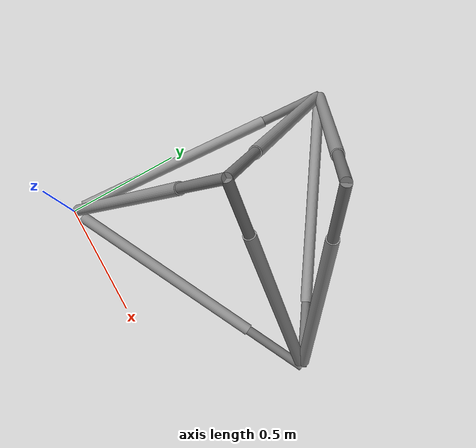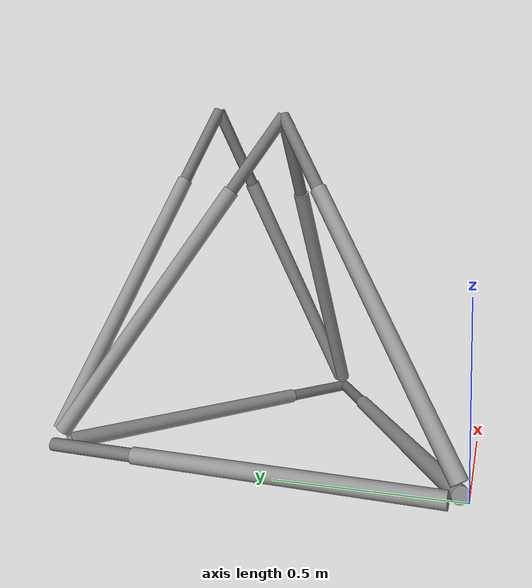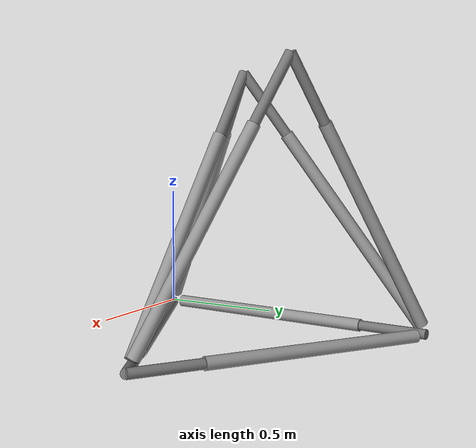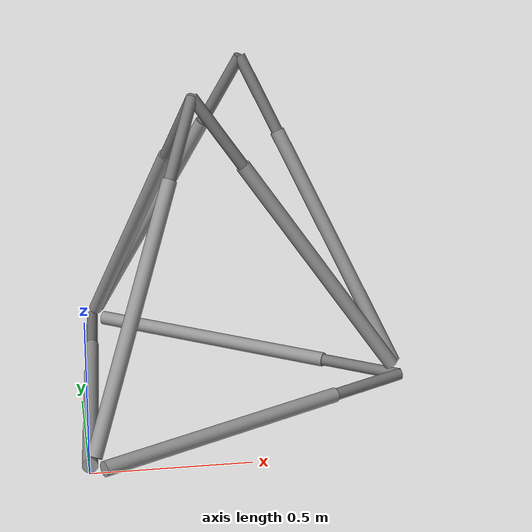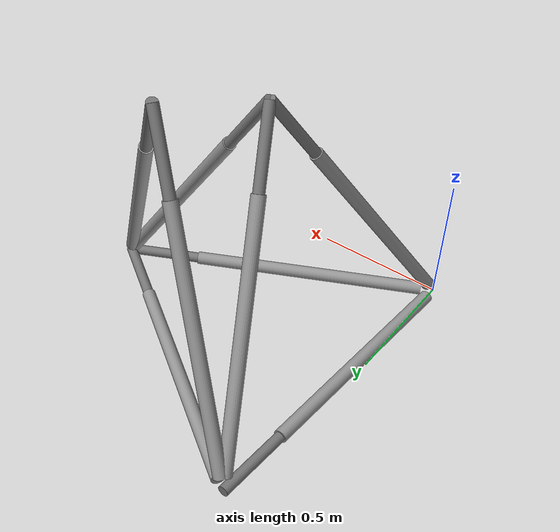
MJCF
<mujoco model="1-tet-1">
  <compiler angle="radian" meshdir="assets" autolimits="true"/>
  <option gravity="0 0 -9.81" timestep="0.002" integrator="implicit"/>

  <option cone="elliptic" impratio="10"/>

  <asset>
    <material name="metal" rgba="0.58 0.58 0.58 1"/>
    <material name="gray" rgba="0.4627 0.4627 0.4627 1"/>
    <material name="red" rgba="0.9 0.1 0.1 1"/>
    <texture name="grid" type="2d" builtin="checker" width="512" height="512" rgb1=".1 .2 .3" rgb2=".2 .3 .4"/>
    <material name="grid" texture="grid" texrepeat="1 1" texuniform="true" reflectance=".2"/>
  </asset>

  <worldbody>
  <body name="ground" pos="0 0 0">
  <freejoint/>

    <body name="[0-1-0]" pos="0.000000 0.000000 0.000000" >

    <geom type="cylinder" pos="0.029142 0.499150 0.000000" axisangle="-0.998300 0.058284 0.000000 1.570796" size="0.025 0.45" material="metal" contype="1"/>
    <body name="[0-1-1]" pos="0.029142 0.499150 0.000000" >
        <geom type="cylinder" pos="0.013724 0.235060 0.000000" axisangle="-0.998300 0.058284 0.000000 1.570796" size="0.02 0.5" material="gray" contype="1"/>
        <joint name="Linear-0-1" type="slide" axis="0.058284 0.998300 0.000000" range="-0.235460 0.714540"/>

    <body name="[1-2-0]" pos="0.042865 0.734210 0.000000" >
    <joint name="Passive1-2" type="ball" pos="0.000000 0.000000 0.000000" axis="0 1 0" damping=".9"/>
    <geom type="cylinder" pos="0.417706 -0.274813 0.000000" axisangle="0.549625 0.835411 -0.000000 1.570796" size="0.025 0.45" material="metal" contype="1"/>
    <body name="[1-2-1]" pos="0.417706 -0.274813 0.000000" >
        <geom type="cylinder" pos="0.196706 -0.129415 0.000000" axisangle="0.549625 0.835411 -0.000000 1.570796" size="0.02 0.5" material="gray" contype="1"/>
        <joint name="Linear-1-2" type="slide" axis="0.835411 -0.549625 0.000000" range="-0.235460 0.714540"/>

    <body name="[2-3-0]" pos="0.614412 -0.404228 0.000000" >
    <joint name="Passive2-3" type="ball" pos="0.000000 0.000000 0.000000" axis="0 1 0" damping=".9"/>
    <geom type="cylinder" pos="-0.288184 0.016825 0.408248" axisangle="-0.033650 -0.576369 0.000000 0.615480" size="0.025 0.45" material="metal" contype="1"/>
    <body name="[2-3-1]" pos="-0.288184 0.016825 0.408248" >
        <geom type="cylinder" pos="-0.135712 0.007923 0.192252" axisangle="-0.033650 -0.576369 0.000000 0.615480" size="0.02 0.5" material="gray" contype="1"/>
        <joint name="Linear-2-3" type="slide" axis="-0.576369 0.033650 0.816497" range="-0.235460 0.714540"/>

    </body>
    </body>

    <body name="[2-4-0]" pos="0.614412 -0.404228 0.000000" >
    <joint name="Passive2-4" type="ball" pos="0.000000 0.000000 0.000000" axis="0 1 0" damping=".9"/>
    <geom type="cylinder" pos="-0.207912 0.138836 0.433009" axisangle="-0.277673 -0.415824 0.000000 0.523612" size="0.025 0.45" material="metal" contype="1"/>
    <body name="[2-4-1]" pos="-0.207912 0.138836 0.433009" >
        <geom type="cylinder" pos="-0.097910 0.065381 0.203913" axisangle="-0.277673 -0.415824 0.000000 0.523612" size="0.02 0.5" material="gray" contype="1"/>
        <joint name="Linear-2-4" type="slide" axis="-0.415824 0.277673 0.866019" range="-0.235460 0.714540"/>

    </body>
    </body>

    </body>
    </body>

    <body name="[1-3-0]" pos="0.042865 0.734210 0.000000" >
    <joint name="Passive1-3" type="ball" pos="0.000000 0.000000 0.000000" axis="0 1 0" damping=".9"/>
    <geom type="cylinder" pos="0.129521 -0.257988 0.408248" axisangle="0.515975 0.259042 -0.000000 0.615480" size="0.025 0.45" material="metal" contype="1"/>
    <body name="[1-3-1]" pos="0.129521 -0.257988 0.408248" >
        <geom type="cylinder" pos="0.060994 -0.121492 0.192252" axisangle="0.515975 0.259042 -0.000000 0.615480" size="0.02 0.5" material="gray" contype="1"/>
        <joint name="Linear-1-3" type="slide" axis="0.259042 -0.515975 0.816497" range="-0.235460 0.714540"/>

    </body>
    </body>

    <body name="[1-4-0]" pos="0.042865 0.734210 0.000000" >
    <joint name="Passive1-4" type="ball" pos="0.000000 0.000000 0.000000" axis="0 1 0" damping=".9"/>
    <geom type="cylinder" pos="0.209794 -0.135976 0.433009" axisangle="0.271953 0.419587 -0.000000 0.523612" size="0.025 0.45" material="metal" contype="1"/>
    <body name="[1-4-1]" pos="0.209794 -0.135976 0.433009" >
        <geom type="cylinder" pos="0.098796 -0.064034 0.203913" axisangle="0.271953 0.419587 -0.000000 0.523612" size="0.02 0.5" material="gray" contype="1"/>
        <joint name="Linear-1-4" type="slide" axis="0.419587 -0.271953 0.866019" range="-0.235460 0.714540"/>

    </body>
    </body>

    </body>
    </body>

    <body name="[0-2-0]" pos="0.000000 0.000000 0.000000" >
    <joint name="Passive0-2" type="ball" pos="0.000000 0.000000 0.000000" axis="0 1 0" damping=".9"/>
    <geom type="cylinder" pos="0.446848 0.224337 0.000000" axisangle="-0.448675 0.893695 0.000000 1.570796" size="0.025 0.45" material="metal" contype="1"/>
    <body name="[0-2-1]" pos="0.446848 0.224337 0.000000" >
        <geom type="cylinder" pos="0.210430 0.105645 0.000000" axisangle="-0.448675 0.893695 0.000000 1.570796" size="0.02 0.5" material="gray" contype="1"/>
        <joint name="Linear-0-2" type="slide" axis="0.893695 0.448675 0.000000" range="-0.235460 0.714540"/>

    </body>
    </body>

    <body name="[0-3-0]" pos="0.000000 0.000000 0.000000" >
    <joint name="Passive0-3" type="ball" pos="0.000000 0.000000 0.000000" axis="0 1 0" damping=".9"/>
    <geom type="cylinder" pos="0.158663 0.241162 0.408248" axisangle="-0.482325 0.317326 0.000000 0.615480" size="0.025 0.45" material="metal" contype="1"/>
    <body name="[0-3-1]" pos="0.158663 0.241162 0.408248" >
        <geom type="cylinder" pos="0.074718 0.113568 0.192252" axisangle="-0.482325 0.317326 0.000000 0.615480" size="0.02 0.5" material="gray" contype="1"/>
        <joint name="Linear-0-3" type="slide" axis="0.317326 0.482325 0.816497" range="-0.235460 0.714540"/>

    </body>
    </body>
    </body> </worldbody> <equality>
<connect name="kinematic_link_0-0" active="true" body1="[0-2-1]" body2="[1-2-1]" anchor=" 0.657277 0.329982 0.000000" />
<connect name="kinematic_link_1-0" active="true" body1="[0-3-1]" body2="[1-3-1]" anchor=" 0.233381 0.354731 0.600501" />
<connect name="kinematic_link_1-1" active="true" body1="[0-3-1]" body2="[2-3-1]" anchor=" 0.233381 0.354731 0.600501" />
<connect name="kinematic_link_2-0" active="true" body1="[1-3-1]" body2="[0-3-1]" anchor=" 0.190515 -0.379479 0.600501" />
<connect name="kinematic_link_2-1" active="true" body1="[1-3-1]" body2="[2-3-1]" anchor=" 0.190515 -0.379479 0.600501" />
<connect name="kinematic_link_3-0" active="true" body1="[1-4-1]" body2="[2-4-1]" anchor=" 0.308590 -0.200010 0.636922" />
<connect name="kinematic_link_4-0" active="true" body1="[2-3-1]" body2="[0-3-1]" anchor=" -0.423896 0.024748 0.600501" />
<connect name="kinematic_link_4-1" active="true" body1="[2-3-1]" body2="[1-3-1]" anchor=" -0.423896 0.024748 0.600501" />
<connect name="kinematic_link_5-0" active="true" body1="[2-4-1]" body2="[1-4-1]" anchor=" -0.305822 0.204217 0.636922" /></equality><actuator>

<intvelocity name="Member-1-2" joint="Linear-1-2" kp="18000"  kv="10000" inheritrange="1" />
<intvelocity name="Member-1-3" joint="Linear-1-3" kp="18000"  kv="10000" inheritrange="1" />
<intvelocity name="Member-1-4" joint="Linear-1-4" kp="18000"  kv="10000" inheritrange="1" />
<intvelocity name="Member-0-1" joint="Linear-0-1" kp="18000"  kv="10000" inheritrange="1" />
<intvelocity name="Member-0-2" joint="Linear-0-2" kp="18000"  kv="10000" inheritrange="1" />
<intvelocity name="Member-0-3" joint="Linear-0-3" kp="18000"  kv="10000" inheritrange="1" />
<intvelocity name="Member-2-3" joint="Linear-2-3" kp="18000"  kv="10000" inheritrange="1" />
<intvelocity name="Member-2-4" joint="Linear-2-4" kp="18000"  kv="10000" inheritrange="1" /></actuator>
</mujoco>
